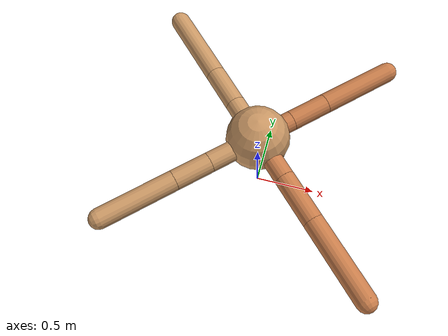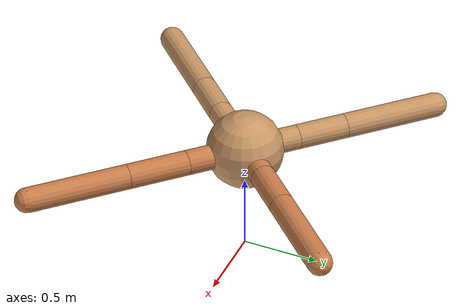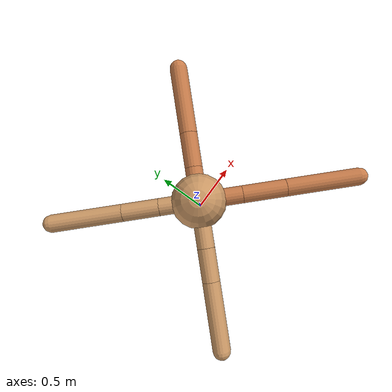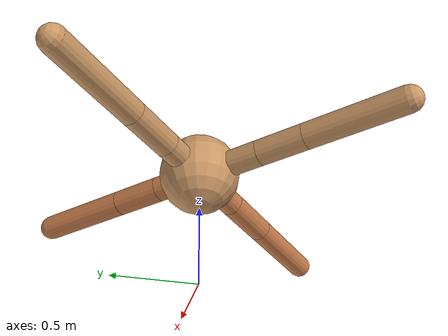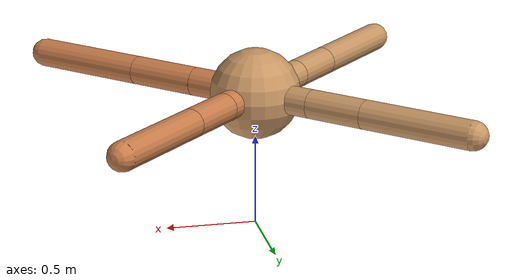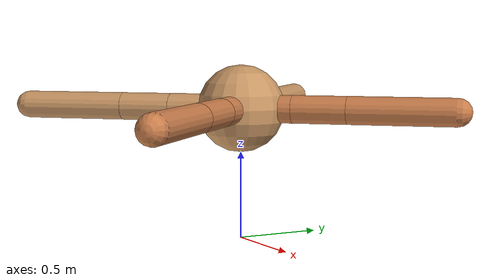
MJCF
<mujoco model="ant">
  <compiler angle="degree" coordinate="local" inertiafromgeom="true" />
  <option integrator="RK4" timestep="0.01" />
  <custom>
    <numeric data="0.0 0.0 0.55 1.0 0.0 0.0 0.0 0.0 1.0 0.0 -1.0 0.0 -1.0 0.0 1.0" name="init_qpos" />
  </custom>
  <default>
    <joint armature="1" damping="1" limited="true" />
    <geom conaffinity="0" condim="3" density="5.0" friction="1.5 0.1 0.1" margin="0.01" rgba="0.8 0.6 0.4 1" />
  </default>
  <worldbody>
    <body name="torso" pos="0 0 0.75">
      <geom name="torso_geom" pos="0 0 0" size="0.25" type="sphere" />

      <body name="front_left_leg" pos="0 0 0">
        <geom fromto="0.0 0.0 0.0 0.21426814572351172 0.21426814572351172 0.0" name="aux_1_geom" size="0.08" type="capsule" rgba=".8 .5 .3 1" />
        <body name="aux_1" pos="0.21426814572351172 0.21426814572351172 0.0">
          <joint axis="0 0 1" name="hip_1" pos="0.0 0.0 0.0" range="-40 40" type="hinge" />
          <geom fromto="0.0 0.0 0.0 0.2213948162612785 0.2213948162612785 0.0" name="left_leg_geom" size="0.08" type="capsule" rgba=".8 .5 .3 1" />
          <body pos="0.2213948162612785 0.2213948162612785 0.0" name="front_left_foot">
            <joint axis="-1 1 0" name="ankle_1" pos="0.0 0.0 0.0" range="30 100" type="hinge" />
            <geom fromto="0.0 0.0 0.0 0.4287177354204711 0.4287177354204711 0.0" name="left_ankle_geom" size="0.08" type="capsule" rgba=".8 .5 .3 1" />
          </body>
        </body>
      </body>
      <body name="front_right_leg" pos="0 0 0">
        <geom fromto="0.0 0.0 0.0 -0.2519909472990485 0.2519909472990485 0.0" name="aux_2_geom" size="0.08" type="capsule" />
        <body name="aux_2" pos="-0.2519909472990485 0.2519909472990485 0.0">
          <joint axis="0 0 1" name="hip_2" pos="0.0 0.0 0.0" range="-40 40" type="hinge" />
          <geom fromto="0.0 0.0 0.0 -0.23191586459382574 0.23191586459382574 0.0" name="right_leg_geom" size="0.08" type="capsule" />
          <body pos="-0.23191586459382574 0.23191586459382574 0.0" name="front_right_foot">
            <joint axis="1 1 0" name="ankle_2" pos="0.0 0.0 0.0" range="-100 -30" type="hinge" />
            <geom fromto="0.0 0.0 0.0 -0.4481258776718233 0.4481258776718233 0.0" name="right_ankle_geom" size="0.08" type="capsule" />
          </body>
        </body>
      </body>
      <body name="left_back_leg" pos="0 0 0">
        <geom fromto="0.0 0.0 0.0 -0.2989686290436899 -0.2989686290436899 0.0" name="aux_3_geom" size="0.08" type="capsule" />
        <body name="aux_3" pos="-0.2989686290436899 -0.2989686290436899 0.0">
          <joint axis="0 0 1" name="hip_3" pos="0.0 0.0 0.0" range="-40 40" type="hinge" />
          <geom fromto="0.0 0.0 0.0 -0.2099790949975703 -0.2099790949975703 0.0" name="back_leg_geom" size="0.08" type="capsule" />
          <body pos="-0.2099790949975703 -0.2099790949975703 0.0" name="left_back_foot">
            <joint axis="-1 1 0" name="ankle_3" pos="0.0 0.0 0.0" range="-100 -30" type="hinge" />
            <geom fromto="0.0 0.0 0.0 -0.4271797150364684 -0.4271797150364684 0.0" name="third_ankle_geom" size="0.08" type="capsule" />
          </body>
        </body>
      </body>
      <body name="right_back_leg" pos="0 0 0">
        <geom fromto="0.0 0.0 0.0 0.2786407039034448 -0.2786407039034448 0.0" name="aux_4_geom" size="0.08" type="capsule" rgba=".8 .5 .3 1" />
        <body name="aux_4" pos="0.2786407039034448 -0.2786407039034448 0.0">
          <joint axis="0 0 1" name="hip_4" pos="0.0 0.0 0.0" range="-40 40" type="hinge" />
          <geom fromto="0.0 0.0 0.0 0.27817182366376925 -0.27817182366376925 0.0" name="rightback_leg_geom" size="0.08" type="capsule" rgba=".8 .5 .3 1" />
          <body pos="0.27817182366376925 -0.27817182366376925 0.0" name="right_back_foot">
            <joint axis="1 1 0" name="ankle_4" pos="0.0 0.0 0.0" range="30 100" type="hinge" />
            <geom fromto="0.0 0.0 0.0 0.4671986934280737 -0.4671986934280737 0.0" name="fourth_ankle_geom" size="0.08" type="capsule" rgba=".8 .5 .3 1" />
          </body>
        </body>
      </body>
    </body>
  </worldbody>
  <actuator>
    <motor ctrllimited="true" ctrlrange="-1.0 1.0" joint="hip_4" gear="150" />
    <motor ctrllimited="true" ctrlrange="-1.0 1.0" joint="ankle_4" gear="150" />
    <motor ctrllimited="true" ctrlrange="-1.0 1.0" joint="hip_1" gear="150" />
    <motor ctrllimited="true" ctrlrange="-1.0 1.0" joint="ankle_1" gear="150" />
    <motor ctrllimited="true" ctrlrange="-1.0 1.0" joint="hip_2" gear="150" />
    <motor ctrllimited="true" ctrlrange="-1.0 1.0" joint="ankle_2" gear="150" />
    <motor ctrllimited="true" ctrlrange="-1.0 1.0" joint="hip_3" gear="150" />
    <motor ctrllimited="true" ctrlrange="-1.0 1.0" joint="ankle_3" gear="150" />
  </actuator>
</mujoco>
